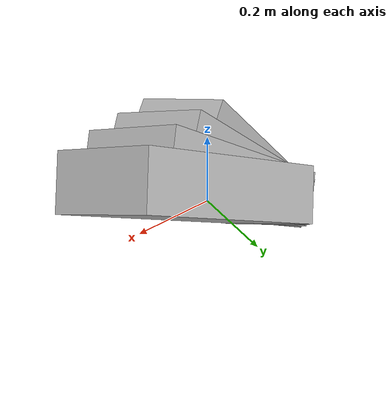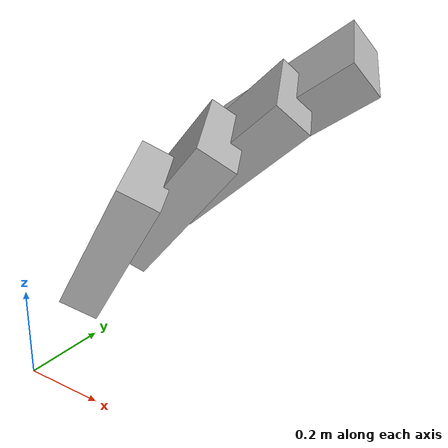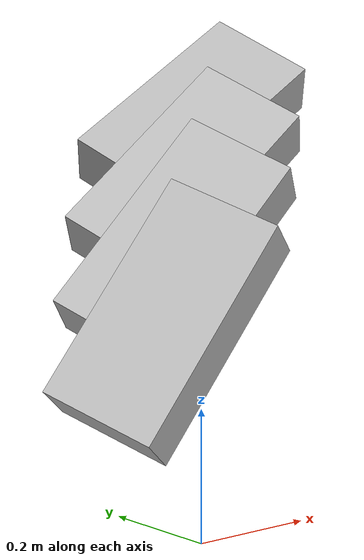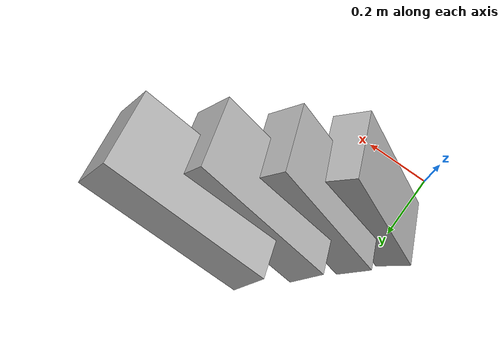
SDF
<?xml version='1.0' encoding='utf-8'?>
<sdf version="1.7">
  <model name="pose_chain">
    <link name="link_1">
      <pose>0.1 0.2 0.3 0.4 0.5 0.6</pose>
      <visual name="link_1_visual">
        <geometry>
          <box>
            <size>0.1 0.2 0.4</size>
          </box>
        </geometry>
      </visual>
      <collision name="link_1_collision">
        <geometry>
          <box>
            <size>0.1 0.2 0.4</size>
          </box>
        </geometry>
      </collision>
      <inertial>
        <mass>1.23</mass>
        <inertia>
          <ixx>0.0205</ixx>
          <ixy>0</ixy>
          <ixz>0</ixz>
          <iyy>0.017425</iyy>
          <iyz>0</iyz>
          <izz>0.005125</izz>
        </inertia>
      </inertial>
    </link>
    <link name="link_2">
      <pose>0.2 0.3 0.4 0.5 0.6 0.7</pose>
      <visual name="link_2_visual">
        <geometry>
          <box>
            <size>0.1 0.2 0.4</size>
          </box>
        </geometry>
      </visual>
      <collision name="link_2_collision">
        <geometry>
          <box>
            <size>0.1 0.2 0.4</size>
          </box>
        </geometry>
      </collision>
      <inertial>
        <mass>1.23</mass>
        <inertia>
          <ixx>0.0205</ixx>
          <ixy>0</ixy>
          <ixz>0</ixz>
          <iyy>0.017425</iyy>
          <iyz>0</iyz>
          <izz>0.005125</izz>
        </inertia>
      </inertial>
    </link>
    <link name="link_3">
      <pose>0.3 0.4 0.5 0.6 0.7 0.8</pose>
      <visual name="link_3_visual">
        <geometry>
          <box>
            <size>0.1 0.2 0.4</size>
          </box>
        </geometry>
      </visual>
      <collision name="link_3_collision">
        <geometry>
          <box>
            <size>0.1 0.2 0.4</size>
          </box>
        </geometry>
      </collision>
      <inertial>
        <mass>1.23</mass>
        <inertia>
          <ixx>0.0205</ixx>
          <ixy>0</ixy>
          <ixz>0</ixz>
          <iyy>0.017425</iyy>
          <iyz>0</iyz>
          <izz>0.005125</izz>
        </inertia>
      </inertial>
    </link>
    <link name="link_4">
      <pose>0.4 0.5 0.6 0.7 0.8 0.9</pose>
      <visual name="link_4_visual">
        <geometry>
          <box>
            <size>0.1 0.2 0.4</size>
          </box>
        </geometry>
      </visual>
      <collision name="link_4_collision">
        <geometry>
          <box>
            <size>0.1 0.2 0.4</size>
          </box>
        </geometry>
      </collision>
      <inertial>
        <mass>1.23</mass>
        <inertia>
          <ixx>0.0205</ixx>
          <ixy>0</ixy>
          <ixz>0</ixz>
          <iyy>0.017425</iyy>
          <iyz>0</iyz>
          <izz>0.005125</izz>
        </inertia>
      </inertial>
    </link>
    <joint name="joint_1" type="revolute">
      <pose>0.9 0.8 0.7 0.6 0.5 0.4</pose>
      <parent>link_1</parent>
      <child>link_2</child>
      <axis>
        <xyz>1 0 0</xyz>
        <limit>
          <lower>-1.5</lower>
          <upper>1.5</upper>
        </limit>
      </axis>
    </joint>
    <joint name="joint_2" type="revolute">
      <pose>0.8 0.7 0.6 0.5 0.4 0.3</pose>
      <parent>link_2</parent>
      <child>link_3</child>
      <axis>
        <xyz>1 0 0</xyz>
        <limit>
          <lower>-1.5</lower>
          <upper>1.5</upper>
        </limit>
      </axis>
    </joint>
    <joint name="joint_3" type="revolute">
      <pose>0.7 0.6 0.5 0.4 0.3 0.2</pose>
      <parent>link_3</parent>
      <child>link_4</child>
      <axis>
        <xyz>1 0 0</xyz>
        <limit>
          <lower>-1.5</lower>
          <upper>1.5</upper>
        </limit>
      </axis>
    </joint>
  </model>
</sdf>
